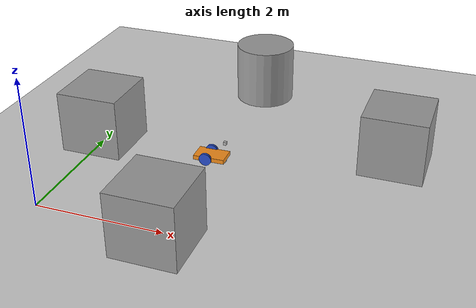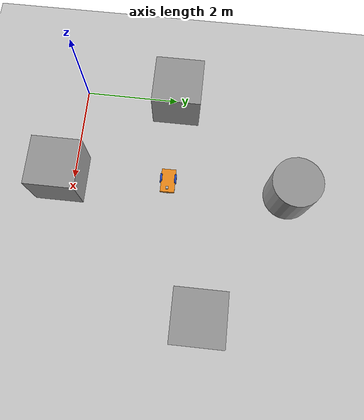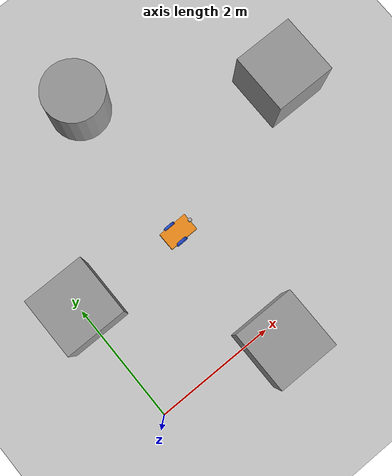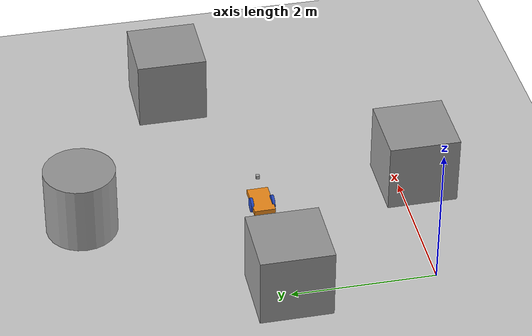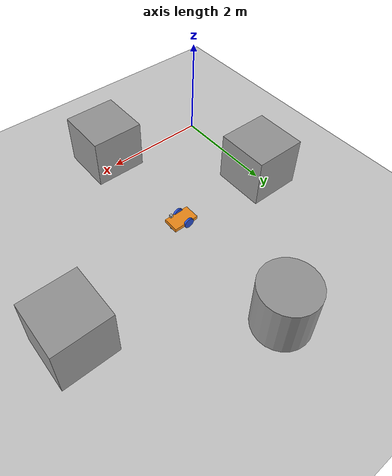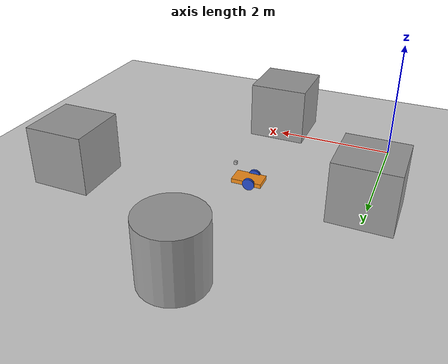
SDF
<sdf version="1.7">
 <world name="default">
  <light name="sun" type="directional">
   <pose>0 0 10 0 -0 0</pose>
   <diffuse>0.8 0.8 0.8 1</diffuse>
   <specular>0.2 0.2 0.2 1</specular>
   <attenuation>
    <range>1000</range>
    <constant>0.9</constant>
    <linear>0.01</linear>
    <quadratic>0.001</quadratic>
   </attenuation>
   <direction>-0.5 0.1 -0.9</direction>
   <spot><inner_angle>0</inner_angle><outer_angle>0</outer_angle><falloff>0</falloff></spot>
  </light>
  <model name="ground_plane">
   <static>1</static>
   <link name="link">
    <collision name="collision">
     <geometry><plane><normal>0 0 1</normal><size>100 100</size></plane></geometry>
     <surface>
      <contact><collide_bitmask>65535</collide_bitmask></contact>
      <friction><ode><mu>100</mu><mu2>50</mu2></ode></friction>
     </surface>
    </collision>
    <visual name="visual">
     <cast_shadows>0</cast_shadows>
     <geometry><plane><normal>0 0 1</normal><size>100 100</size></plane></geometry>
     <material>
      <script><uri>file://media/materials/scripts/gazebo.material</uri><name>Gazebo/Grey</name></script>
     </material>
    </visual>
   </link>
  </model>
  <gravity>0 0 -9.8</gravity>
  <magnetic_field>6e-06 2.3e-05 -4.2e-05</magnetic_field>
  <atmosphere type="adiabatic"/>
  <physics type="ode">
   <max_step_size>0.001</max_step_size>
   <real_time_factor>1</real_time_factor>
   <real_time_update_rate>1000</real_time_update_rate>
  </physics>
  <scene><ambient>0.4 0.4 0.4 1</ambient><background>0.7 0.7 0.7 1</background><shadows>1</shadows></scene>
  <spherical_coordinates>
   <surface_model>EARTH_WGS84</surface_model>
   <latitude_deg>0</latitude_deg>
   <longitude_deg>0</longitude_deg>
   <elevation>0</elevation>
   <heading_deg>0</heading_deg>
  </spherical_coordinates>
  <model name="my_test_robot">
   <link name="link_chassis">
    <inertial>
     <pose>0 0 0.1 0 -0 0</pose>
     <mass>5.00001</mass>
     <inertia>
      <ixx>0.0395428</ixx>
      <ixy>0</ixy>
      <ixz>-3.10499e-07</ixz>
      <iyy>0.10621</iyy>
      <iyz>0</iyz>
      <izz>0.10621</izz>
     </inertia>
    </inertial>
    <collision name="link_chassis_fixed_joint_lump__collision_chassis_collision">
     <geometry><box><size>0.5 0.3 0.07</size></box></geometry>
    </collision>
    <collision name="link_chassis_fixed_joint_lump__caster_front_collision_collision_1">
     <pose>0.35 0 -0.05 0 -0 0</pose>
     <geometry><sphere><radius>0.05</radius></sphere></geometry>
    </collision>
    <collision name="link_chassis_fixed_joint_lump__camera_link_collision_2">
     <pose>0.23 0 0.335 0 -0 0</pose>
     <geometry><box><size>0.05 0.05 0.2</size></box></geometry>
    </collision>
    <visual name="link_chassis_visual">
     <geometry><box><size>0.5 0.3 0.07</size></box></geometry>
     <material>
      <script><name>Gazebo/Orange</name><uri>file://media/materials/scripts/gazebo.material</uri></script>
     </material>
    </visual>
    <visual name="link_chassis_fixed_joint_lump__caster_front_visual_visual_1">
     <pose>0.2 0 -0.05 0 -0 0</pose>
     <geometry><sphere><radius>0.05</radius></sphere></geometry>
    </visual>
    <visual name="link_chassis_fixed_joint_lump__camera_link_visual_2">
     <pose>0.23 0 0.26 0 -0 0</pose>
     <geometry><box><size>0.05 0.05 0.05</size></box></geometry>
    </visual>
    <sensor name="sensor_ray" type="ray">
     <ray>
      <scan>
       <horizontal>
        <samples>360</samples>
        <resolution>1</resolution>
        <min_angle>-3.14</min_angle>
        <max_angle>3.14</max_angle>
       </horizontal>
       <vertical><samples>1</samples><min_angle>0</min_angle><max_angle>0</max_angle></vertical>
      </scan>
      <range><min>0.1</min><max>25</max></range>
     </ray>
     <always_on>1</always_on>
     <visualize>1</visualize>
     <update_rate>100</update_rate>
     <plugin name="laser" filename="libgazebo_ros_ray_sensor.so">
      <ros><remapping>~/out:=scan</remapping></ros>
      <output_type>sensor_msgs/LaserScan</output_type>
      <frame_name>camera_link</frame_name>
     </plugin>
     <pose>0.23 0 0.235 0 -0 0</pose>
    </sensor>
   </link>
   <joint name="joint_left_wheel" type="revolute">
    <pose relative_to="link_chassis">-0.05 -0.15 0 0 -0 0</pose>
    <parent>link_chassis</parent>
    <child>link_left_wheel</child>
    <axis>
     <xyz>0 1 0</xyz>
     <limit><effort>10000</effort><velocity>1000</velocity><lower>-1e+16</lower><upper>1e+16</upper></limit>
     <dynamics><spring_reference>0</spring_reference><spring_stiffness>0</spring_stiffness></dynamics>
    </axis>
   </joint>
   <link name="link_left_wheel">
    <pose relative_to="joint_left_wheel">0 0 0 0 -0 0</pose>
    <inertial>
     <pose>0 0 0 -0 1.5707 1.5707</pose>
     <mass>0.2</mass>
     <inertia>
      <ixx>0.000526667</ixx>
      <ixy>0</ixy>
      <ixz>0</ixz>
      <iyy>0.000526667</iyy>
      <iyz>0</iyz>
      <izz>0.001</izz>
     </inertia>
    </inertial>
    <collision name="link_left_wheel_collision_collision">
     <pose>0 0 0 1.57089 1.57079 -3.14159</pose>
     <geometry><cylinder><length>0.04</length><radius>0.1</radius></cylinder></geometry>
    </collision>
    <visual name="link_left_wheel_visual_visual">
     <pose>0 0 0 1.57089 1.57079 -3.14159</pose>
     <geometry><cylinder><length>0.04</length><radius>0.1</radius></cylinder></geometry>
     <material>
      <script><name>Gazebo/Blue</name><uri>file://media/materials/scripts/gazebo.material</uri></script>
     </material>
    </visual>
   </link>
   <joint name="joint_right_wheel" type="revolute">
    <pose relative_to="link_chassis">-0.05 0.15 0 0 -0 0</pose>
    <parent>link_chassis</parent>
    <child>link_right_wheel</child>
    <axis>
     <xyz>0 1 0</xyz>
     <limit><effort>10000</effort><velocity>1000</velocity><lower>-1e+16</lower><upper>1e+16</upper></limit>
     <dynamics><spring_reference>0</spring_reference><spring_stiffness>0</spring_stiffness></dynamics>
    </axis>
   </joint>
   <link name="link_right_wheel">
    <pose relative_to="joint_right_wheel">0 0 0 0 -0 0</pose>
    <inertial>
     <pose>0 0 0 -0 1.5707 1.5707</pose>
     <mass>0.2</mass>
     <inertia>
      <ixx>0.000526667</ixx>
      <ixy>0</ixy>
      <ixz>0</ixz>
      <iyy>0.000526667</iyy>
      <iyz>0</iyz>
      <izz>0.001</izz>
     </inertia>
    </inertial>
    <collision name="link_right_wheel_collision_collision">
     <pose>0 0 0 1.57089 1.57079 -3.14159</pose>
     <geometry><cylinder><length>0.04</length><radius>0.1</radius></cylinder></geometry>
    </collision>
    <visual name="link_right_wheel_visual_visual">
     <pose>0 0 0 1.57089 1.57079 -3.14159</pose>
     <geometry><cylinder><length>0.04</length><radius>0.1</radius></cylinder></geometry>
     <material>
      <script><name>Gazebo/Blue</name><uri>file://media/materials/scripts/gazebo.material</uri></script>
     </material>
    </visual>
   </link>
   <plugin name="wheel_drive_controller" filename="libgazebo_ros_diff_drive.so">
    <num_wheel_pairs>1</num_wheel_pairs>
    <left_joint>joint_right_wheel</left_joint>
    <right_joint>joint_left_wheel</right_joint>
    <wheel_separation>0.2</wheel_separation>
    <wheel_diameter>0.2</wheel_diameter>
    <max_wheel_torque>20.0</max_wheel_torque>
    <max_wheel_acceleration>10.0</max_wheel_acceleration>
    <odometry_frame>odom</odometry_frame>
    <robot_base_frame>link_chassis</robot_base_frame>
    <ros><namespace>/</namespace><argument>/cmd_vel:=cmd_vel</argument><argument>/odom:=odom</argument></ros>
    <publish_odom>1</publish_odom>
    <publish_odom_tf>1</publish_odom_tf>
    <update_rate>100.0</update_rate>
   </plugin>
   <frame name="camera_joint" attached_to="link_chassis"><pose>0.23 0 0.235 0 -0 0</pose></frame>
   <frame name="camera_link" attached_to="camera_joint"/>
   <pose>1.91226 2.0038 0.100001 -9e-06 -1e-06 0.014861</pose>
  </model>
  <model name="unit_box">
   <pose>0.030253 2.01928 0.499995 -1e-05 -0 -0</pose>
   <link name="link">
    <inertial>
     <mass>1</mass>
     <inertia>
      <ixx>0.166667</ixx>
      <ixy>0</ixy>
      <ixz>0</ixz>
      <iyy>0.166667</iyy>
      <iyz>0</iyz>
      <izz>0.166667</izz>
     </inertia>
    </inertial>
    <collision name="collision"><geometry><box><size>1 1 1</size></box></geometry></collision>
    <visual name="visual">
     <geometry><box><size>1 1 1</size></box></geometry>
     <material>
      <script><name>Gazebo/Grey</name><uri>file://media/materials/scripts/gazebo.material</uri></script>
     </material>
    </visual>
   </link>
  </model>
  <model name="unit_box_0">
   <pose>2.03417 -0.226233 0.499995 0 1e-05 0</pose>
   <link name="link">
    <inertial>
     <mass>1</mass>
     <inertia>
      <ixx>0.166667</ixx>
      <ixy>0</ixy>
      <ixz>0</ixz>
      <iyy>0.166667</iyy>
      <iyz>0</iyz>
      <izz>0.166667</izz>
     </inertia>
    </inertial>
    <collision name="collision"><geometry><box><size>1 1 1</size></box></geometry></collision>
    <visual name="visual">
     <geometry><box><size>1 1 1</size></box></geometry>
     <material>
      <script><name>Gazebo/Grey</name><uri>file://media/materials/scripts/gazebo.material</uri></script>
     </material>
    </visual>
   </link>
  </model>
  <model name="unit_box_1">
   <pose>4.64263 2.85432 0.499995 -1e-05 -0 0</pose>
   <link name="link">
    <inertial>
     <mass>1</mass>
     <inertia>
      <ixx>0.166667</ixx>
      <ixy>0</ixy>
      <ixz>0</ixz>
      <iyy>0.166667</iyy>
      <iyz>0</iyz>
      <izz>0.166667</izz>
     </inertia>
    </inertial>
    <collision name="collision"><geometry><box><size>1 1 1</size></box></geometry></collision>
    <visual name="visual">
     <geometry><box><size>1 1 1</size></box></geometry>
     <material>
      <script><name>Gazebo/Grey</name><uri>file://media/materials/scripts/gazebo.material</uri></script>
     </material>
    </visual>
   </link>
  </model>
  <model name="unit_cylinder">
   <pose>1.95909 4.51868 0.499997 3e-06 4e-06 -0</pose>
   <link name="link">
    <inertial>
     <mass>1</mass>
     <inertia><ixx>0.145833</ixx><ixy>0</ixy><ixz>0</ixz><iyy>0.145833</iyy><iyz>0</iyz><izz>0.125</izz></inertia>
    </inertial>
    <collision name="collision">
     <geometry><cylinder><radius>0.5</radius><length>1</length></cylinder></geometry>
    </collision>
    <visual name="visual">
     <geometry><cylinder><radius>0.5</radius><length>1</length></cylinder></geometry>
     <material>
      <script><name>Gazebo/Grey</name><uri>file://media/materials/scripts/gazebo.material</uri></script>
     </material>
    </visual>
   </link>
  </model>
 </world>
</sdf>
